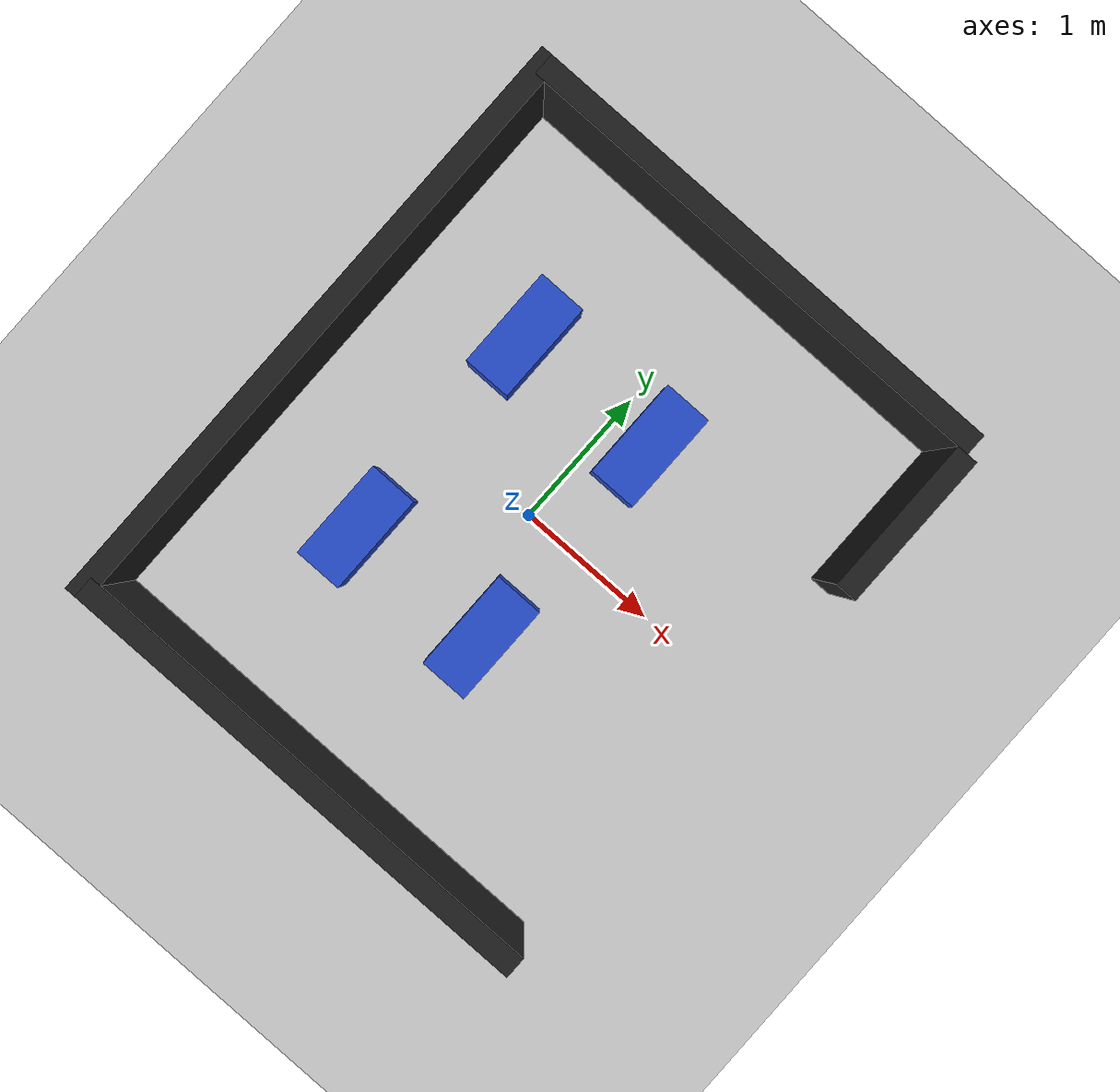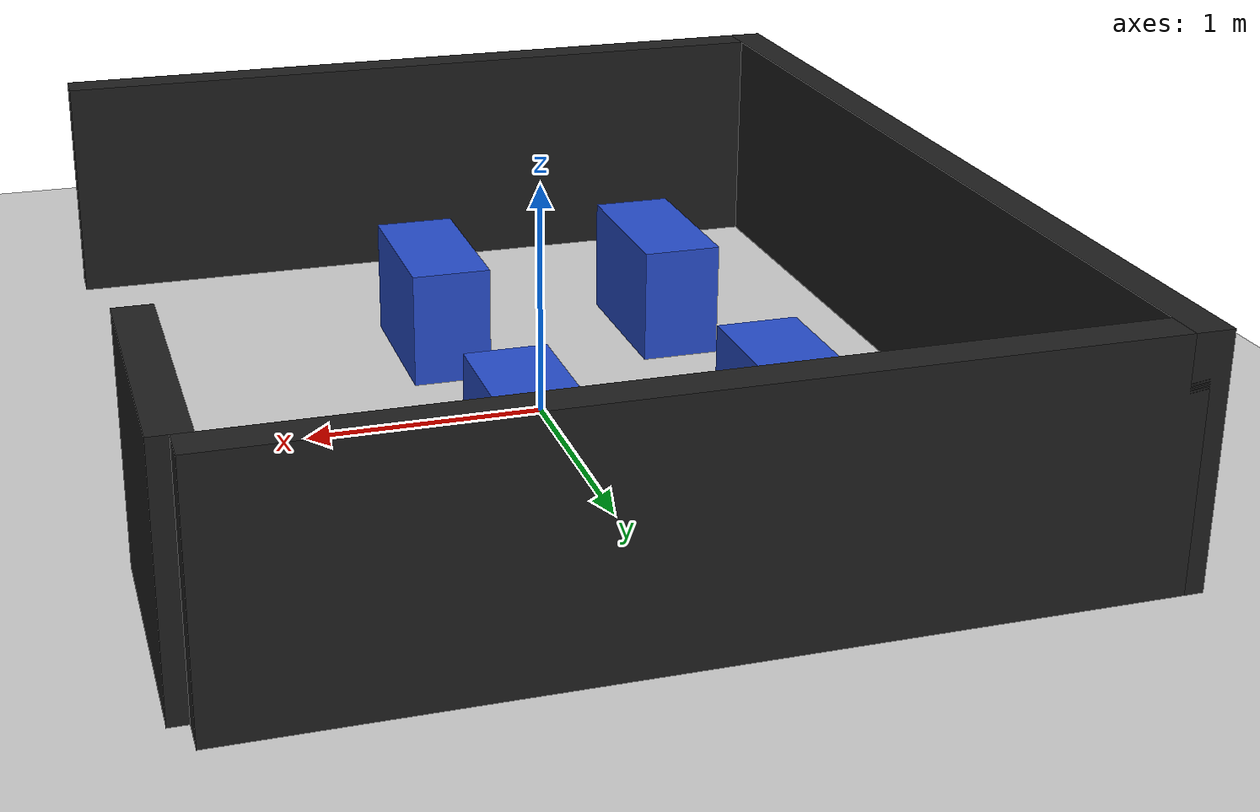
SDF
<?xml version="1.0" ?>
<sdf version='1.7'>
  <world name='default'>
    <include><uri>model://sun</uri></include>
    <include><uri>model://ground_plane</uri></include>

    <model name='wall_south'>
      <static>1</static>
      <pose>0 -2.085 0.5 0 0 0</pose> <link name='link'>
        <collision name='c'><geometry><box><size>3.45 0.15 1.0</size></box></geometry></collision>
        <visual name='v'><geometry><box><size>3.45 0.15 1.0</size></box></geometry><material><script><name>Gazebo/Black</name></script></material></visual>
      </link>
    </model>

    <model name='wall_north'>
      <static>1</static>
      <pose>0 2.085 0.5 0 0 0</pose> <link name='link'>
        <collision name='c'><geometry><box><size>3.45 0.15 1.0</size></box></geometry></collision>
        <visual name='v'><geometry><box><size>3.45 0.15 1.0</size></box></geometry><material><script><name>Gazebo/Black</name></script></material></visual>
      </link>
    </model>

    <model name='wall_west'>
      <static>1</static>
      <pose>-1.725 0 0.5 0 0 0</pose> <link name='link'>
        <collision name='c'><geometry><box><size>0.15 4.32 1.0</size></box></geometry></collision>
        <visual name='v'><geometry><box><size>0.15 4.32 1.0</size></box></geometry><material><script><name>Gazebo/Black</name></script></material></visual>
      </link>
    </model>

    <model name='wall_east_fixed'>
      <static>1</static>
      <pose>1.725 1.46 0.5 0 0 0</pose> <link name='link'>
        <collision name='c'><geometry><box><size>0.15 1.1 1.0</size></box></geometry></collision>
        <visual name='v'><geometry><box><size>0.15 1.1 1.0</size></box></geometry><material><script><name>Gazebo/Black</name></script></material></visual>
      </link>
    </model>

    <model name='virtual_wall_center'>
      <static>1</static>
      <pose>1.725 -0.5 0.5 0 0 0</pose>
      <link name='link'>
        <collision name='c'><geometry><box><size>0.15 1.22 1.0</size></box></geometry></collision>
      </link>
    </model>

    <model name='virtual_wall_corridor_end'>
      <static>1</static>
      <pose>2.925 -0.55 0.5 0 0 0</pose>
      <link name='link'>
        <collision name='c'><geometry><box><size>0.15 2.92 1.0</size></box></geometry></collision>
      </link>
    </model>

    <model name='virtual_wall_corridor_top'>
      <static>1</static>
      <pose>2.325 0.985 0.5 0 0 0</pose>
      <link name='link'><collision name='c'><geometry><box><size>1.2 0.15 1.0</size></box></geometry></collision></link>
    </model>
    <model name='virtual_wall_corridor_bottom'>
      <static>1</static>
      <pose>2.325 -2.085 0.5 0 0 0</pose>
      <link name='link'><collision name='c'><geometry><box><size>1.2 0.15 1.0</size></box></geometry></collision></link>
    </model>

    <model name='blue_shelf'>
      <static>1</static>
      <pose>-0.77 0.83 0.25 0 0 0</pose>
      <link name='link'>
        <collision name='c'><geometry><box><size>0.34 0.72 0.5</size></box></geometry></collision>
        <visual name='v'><geometry><box><size>0.34 0.72 0.5</size></box></geometry><material><script><name>Gazebo/Blue</name></script></material></visual>
      </link>
    </model>
    <model name='blue_shelf_0'>
      <static>1</static>
      <pose>0.28 0.83 0.25 0 0 0</pose>
      <link name='link'>
        <collision name='c'><geometry><box><size>0.34 0.72 0.5</size></box></geometry></collision>
        <visual name='v'><geometry><box><size>0.34 0.72 0.5</size></box></geometry><material><script><name>Gazebo/Blue</name></script></material></visual>
      </link>
    </model>
    <model name='blue_shelf_1'>
      <static>1</static>
      <pose>-0.77 -0.77 0.25 0 0 0</pose>
      <link name='link'>
        <collision name='c'><geometry><box><size>0.34 0.72 0.5</size></box></geometry></collision>
        <visual name='v'><geometry><box><size>0.34 0.72 0.5</size></box></geometry><material><script><name>Gazebo/Blue</name></script></material></visual>
      </link>
    </model>
    <model name='blue_shelf_2'>
      <static>1</static>
      <pose>0.28 -0.77 0.25 0 0 0</pose>
      <link name='link'>
        <collision name='c'><geometry><box><size>0.34 0.72 0.5</size></box></geometry></collision>
        <visual name='v'><geometry><box><size>0.34 0.72 0.5</size></box></geometry><material><script><name>Gazebo/Blue</name></script></material></visual>
      </link>
    </model>

    <scene>
      <ambient>0.4 0.4 0.4 1</ambient>
      <background>0.7 0.7 0.7 1</background>
      <shadows>1</shadows>
    </scene>
  </world>
</sdf>
